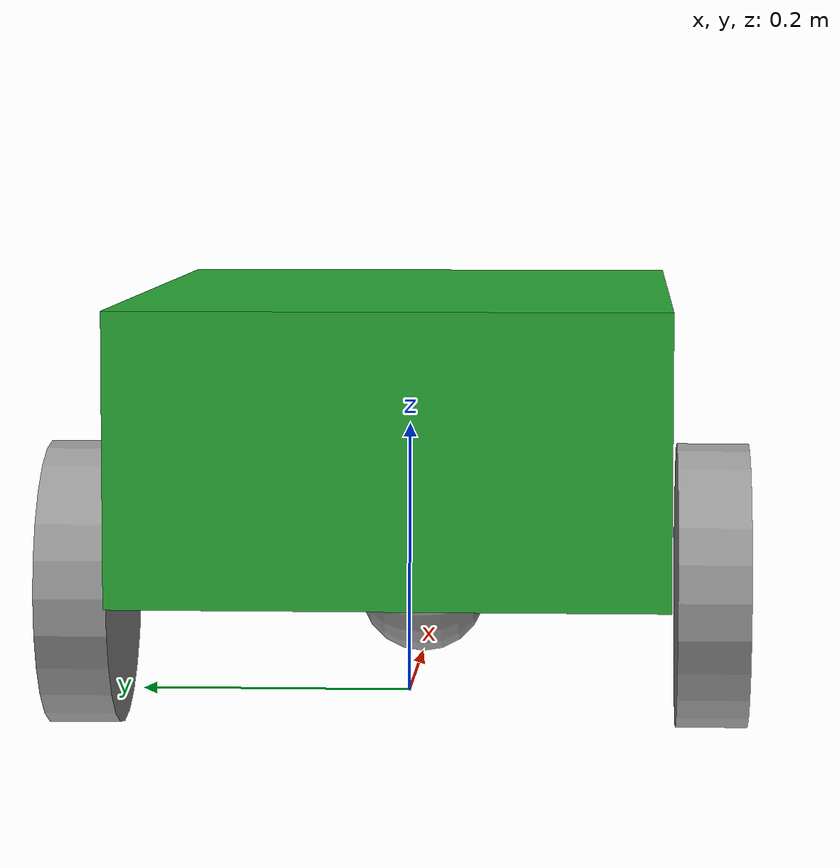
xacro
<?xml version="1.0"?>
<robot xmlns:xacro="http://www.ros.org/wiki/xacro">
    <xacro:property name="base_length" value="0.6"/>
    <xacro:property name="base_width" value="0.38"/>
    <xacro:property name="base_height" value="0.2"/>
    <xacro:property name="wheel_length" value="0.08"/>

   <link name="base_footprint"/>

    <link name="base_link">
        <visual>
            <geometry>
                <box size="${base_length} ${base_width} ${base_height}"/>
            </geometry>
            <origin xyz="0 0 0.1" rpy="0 0 0"/>
            <material name="green"/>
        </visual>
        <inertial>
             <mass value="60" />
                <origin xyz="0.00381548 -0.00072475 0.13654259" rpy="0 0 0" />
                <inertia ixx="0.0010966742070308941" ixy="-3.7461692282368137e-07" ixz="1.9558543577840812e-07"
                        iyy="0.0017930350217347623" iyz="2.0532496529124063e-07"
                        izz="0.0025355228375863507" />
        </inertial>
    </link>

    <link name="carter_wheel_link">
        <visual>
            <geometry>
                <sphere radius="0.05" length="0.1"/>
            </geometry>
            <origin xyz="0 0 0" rpy="1.57 0 0"/>
            <material name="grey"/>
        </visual>
        <collision>
            <geometry>
                <sphere radius="0.05" length="0.1"/>
            </geometry>
            <origin xyz="0 0 0" rpy="1.57 0 0"/>
        </collision>
        <xacro:sphere_inertia m="3" r="0.05" xyz="0 0 0" rpy="0 0 0"/>

    </link>

    <xacro:macro name="wheel_link" params="prefix">

    <link name="${prefix}_wheel_link">
            <visual>
                <geometry>
                    <cylinder radius="0.1" length="0.05"/>
                </geometry>
                <origin xyz="0 0 0" rpy="${pi/ 2.0} 0 0"/>
                    pi = 180 = 3.14
                    pi/2 = 90 = 1.57
                <material name="grey"/>
            </visual>
            <collision>
                <geometry>
                    <cylinder radius="0.1" length="0.05"/>
                </geometry>
                <origin xyz="0 0 0" rpy="${pi/ 2.0} 0 0"/>
                    pi = 180 = 3.14
                    pi/2 = 90 = 1.57
            </collision>
            <xacro:cylinder_inertia m="6" r="0.1" h="0.05" xyz="0 0 0" rpy="${pi/ 2.0} 0 0"/>
        </link>
    </xacro:macro>

    <xacro:wheel_link prefix="right"/>
    <xacro:wheel_link prefix="left"/>

    <joint name="base_footprint_link" type="fixed">
        <parent link="base_footprint"/>
        <child link="base_link"/>
        <origin xyz="0 0 0.1" rpy="0 0 0"/>
    </joint>

    <joint name="base_carter_wheel_joint" type="fixed">
        <parent link="base_link"/>
        <child link="carter_wheel_link"/>
        <origin xyz="${base_length / 3.0} 0 -0.05" rpy="0 0 0"/>
        <axis xyz="0 0 0"/>
    </joint>

    <joint name="base_right_wheel_joint" type="continuous">
        <parent link="base_link"/>
        <child link="right_wheel_link"/>
        <origin xyz="${-base_length / 4.0}  ${-(base_width/ 2.0) - 0.03} 0" rpy="0 0 0"/>
        <axis xyz="0 1 0"/>
    </joint>

    <joint name="base_left_wheel_joint" type="continuous">
        <parent link="base_link"/>
        <child link="left_wheel_link"/>
        <origin xyz="${-base_length / 4.0}  ${(base_width / 2.0) + 0.03} 0" rpy="0 0 0"/>
        <axis xyz="0 1 0"/>
    </joint>
</robot>
